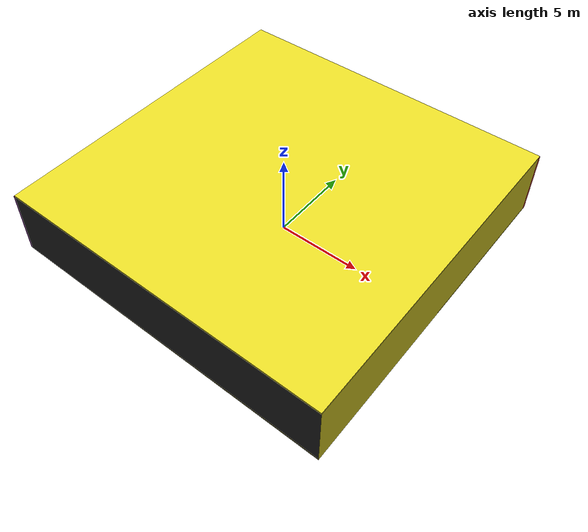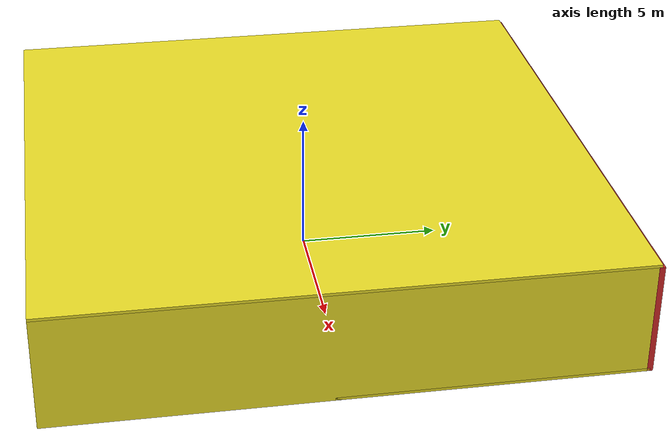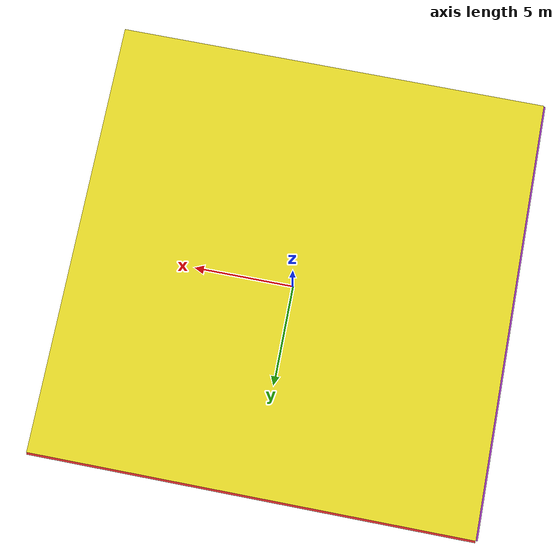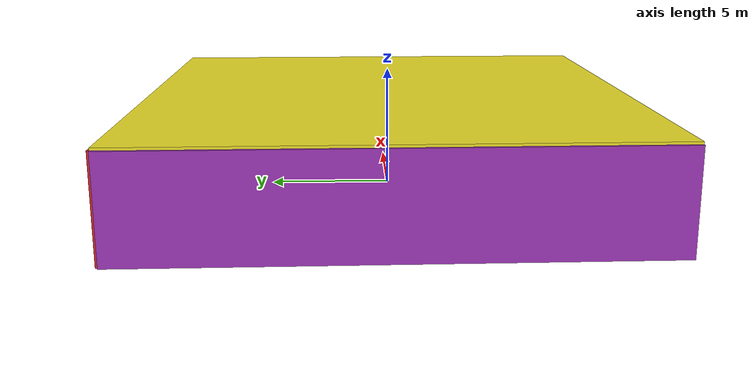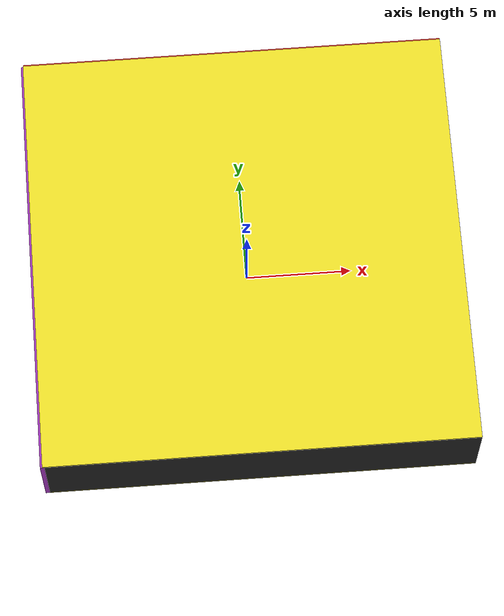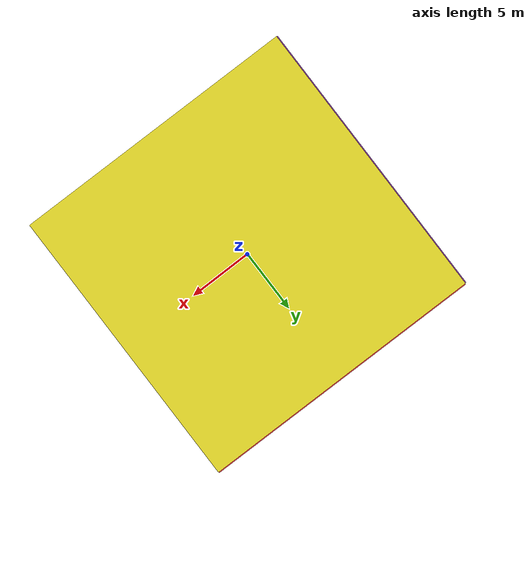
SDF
<sdf version="1.4">
 <world name="default">
  <physics type="ode">
   <max_step_size>0.001</max_step_size>
   <real_time_factor>1</real_time_factor>
   <real_time_update_rate>1000</real_time_update_rate>
   <gravity>0 0 -9.8</gravity>
  </physics>
  <scene><ambient>0.4 0.4 0.4 1</ambient><background>0.7 0.7 0.7 1</background><shadows>1</shadows></scene>
  <model name="Surrounding">
   <static>1</static>
   <link name="Ceiling">
    <collision name="Ceiling_Collision"><geometry><box><size>20 20 0.1</size></box></geometry></collision>
    <visual name="Ceiling_Visual">
     <geometry><box><size>20 20 0.1</size></box></geometry>
     <material>
      <script><uri>file://media/materials/scripts/gazebo.material</uri><name>Gazebo/Yellow</name></script>
     </material>
    </visual>
    <pose>0 0 4.05 0 0 0</pose>
   </link>
   <link name="Wall_South">
    <collision name="Wall_South_Collision">
     <geometry><box><size>20 0 4</size></box></geometry>
     <pose>0 0 2 0 -0 0</pose>
    </collision>
    <visual name="Wall_South_Visual">
     <pose>0 0 2 0 -0 0</pose>
     <geometry><box><size>20 0 4</size></box></geometry>
     <material>
      <script><uri>file://media/materials/scripts/gazebo.material</uri><name>Gazebo/FlatBlack</name></script>
     </material>
    </visual>
    <velocity_decay><linear>0</linear><angular>0</angular></velocity_decay>
    <pose>0 -10 0 0 -0 0</pose>
   </link>
   <link name="Wall_East">
    <collision name="Wall_21_Collision">
     <geometry><box><size>20 0 4</size></box></geometry>
     <pose>0 0 2 0 -0 0</pose>
    </collision>
    <visual name="Wall_21_Visual">
     <pose>0 0 2 0 -0 0</pose>
     <geometry><box><size>20 0 4</size></box></geometry>
     <material>
      <script><uri>file://media/materials/scripts/gazebo.material</uri><name>Gazebo/Yellow</name></script>
     </material>
    </visual>
    <velocity_decay><linear>0</linear><angular>0</angular></velocity_decay>
    <pose>10 0 0 0 -0 1.5708</pose>
   </link>
   <link name="Wall_North">
    <collision name="Wall_22_Collision">
     <geometry><box><size>20 0.2 4</size></box></geometry>
     <pose>0 0 2 0 -0 0</pose>
    </collision>
    <visual name="Wall_22_Visual">
     <pose>0 0 2 0 -0 0</pose>
     <geometry><box><size>20 0.2 4</size></box></geometry>
     <material>
      <script><uri>file://media/materials/scripts/gazebo.material</uri><name>Gazebo/Red</name></script>
     </material>
    </visual>
    <velocity_decay><linear>0</linear><angular>0</angular></velocity_decay>
    <pose>0 10 0 0 -0 0</pose>
   </link>
   <link name="Wall_West">
    <collision name="Wall_23_Collision">
     <geometry><box><size>20 0.2 4</size></box></geometry>
     <pose>0 0 2 0 -0 0</pose>
    </collision>
    <visual name="Wall_23_Visual">
     <pose>0 0 2 0 -0 0</pose>
     <geometry><box><size>20 0.2 4</size></box></geometry>
     <material>
      <script><uri>file://media/materials/scripts/gazebo.material</uri><name>Gazebo/Purple</name></script>
     </material>
    </visual>
    <velocity_decay><linear>0</linear><angular>0</angular></velocity_decay>
    <pose>-10 0 0 0 0 -1.5708</pose>
   </link>
   <link name="Ground_link">
    <collision name="collision">
     <pose>0 0 .05 0 -0 0</pose>
     <geometry><box><size>20 20 0.1</size></box></geometry>
    </collision>
    <visual name="visual">
     <pose>0 0 .05 0 -0 0</pose>
     <geometry><box><size>20 20 0.1</size></box></geometry>
     <material>
      <script>
       <uri>file://media/materials/scripts/gazebo.material</uri>
       <name>Gazebo/YellowTransparent</name>
      </script>
     </material>
    </visual>
   </link>
   <static>1</static>
  </model>
  <spherical_coordinates>
   <surface_model>EARTH_WGS84</surface_model>
   <latitude_deg>0</latitude_deg>
   <longitude_deg>0</longitude_deg>
   <elevation>0</elevation>
   <heading_deg>0</heading_deg>
  </spherical_coordinates>
  <light name="lightball_0" type="diffuse">
   <diffuse>0.8 0.8 0.8 1</diffuse>
   <specular>0.2 0.2 0.2 1</specular>
   <attenuation>
    <range>100</range>
    <constant>0.7</constant>
    <linear>0.01</linear>
    <quadratic>0.001</quadratic>
   </attenuation>
   <direction>-0.5 0.1 -0.9</direction>
   <pose>9.00463370835 8.34388807302 3.87215695845 0 0 0</pose>
  </light>
  <light name="lightball_1" type="diffuse">
   <diffuse>0.8 0.8 0.8 1</diffuse>
   <specular>0.2 0.2 0.2 1</specular>
   <attenuation>
    <range>100</range>
    <constant>0.7</constant>
    <linear>0.01</linear>
    <quadratic>0.001</quadratic>
   </attenuation>
   <direction>-0.5 0.1 -0.9</direction>
   <pose>3.79324652256 4.43400416601 3.70478920413 0 0 0</pose>
  </light>
  <light name="lightball_2" type="diffuse">
   <diffuse>0.8 0.8 0.8 1</diffuse>
   <specular>0.2 0.2 0.2 1</specular>
   <attenuation>
    <range>100</range>
    <constant>0.7</constant>
    <linear>0.01</linear>
    <quadratic>0.001</quadratic>
   </attenuation>
   <direction>-0.5 0.1 -0.9</direction>
   <pose>-0.195912346609 1.82568205018 2.84617736725 0 0 0</pose>
  </light>
  <light name="lightball_3" type="diffuse">
   <diffuse>0.8 0.8 0.8 1</diffuse>
   <specular>0.2 0.2 0.2 1</specular>
   <attenuation>
    <range>100</range>
    <constant>0.7</constant>
    <linear>0.01</linear>
    <quadratic>0.001</quadratic>
   </attenuation>
   <direction>-0.5 0.1 -0.9</direction>
   <pose>-2.61444335181 -2.66633281557 1.92513424654 0 0 0</pose>
  </light>
  <light name="lightball_4" type="diffuse">
   <diffuse>0.8 0.8 0.8 1</diffuse>
   <specular>0.2 0.2 0.2 1</specular>
   <attenuation>
    <range>100</range>
    <constant>0.7</constant>
    <linear>0.01</linear>
    <quadratic>0.001</quadratic>
   </attenuation>
   <direction>-0.5 0.1 -0.9</direction>
   <pose>9.86964488893 5.64366581357 1.21777105797 0 0 0</pose>
  </light>
  <include>
   <uri>model://construction_cone</uri>
   <pose>-6.71506742506 0.808028312877 0 0 0 0.674797777197</pose>
  </include>
  <include>
   <uri>model://textured_shapes</uri>
   <pose>-5.04965418712 1.17597001665 0 0 0 1.98072308834</pose>
  </include>
  <include>
   <uri>model://construction_cone</uri>
   <pose>2.1634560923 -7.13431152407 0 0 0 0.541031014973</pose>
  </include>
  <include>
   <uri>model://robocup_3Dsim_goal</uri>
   <pose>4.15845424717 -1.32138008221 0 0 0 2.1567322602</pose>
  </include>
  <include><uri>model://cabinet</uri><pose>7.07602161679 -7.91681652823 0 0 0 0.735504606047</pose></include>
 </world>
</sdf>

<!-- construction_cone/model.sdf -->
<sdf version="1.5">
  <model name="Construction Cone">
    <link name="link">
      <collision name="collision">
        <geometry>
          <mesh>
            <scale>10 10 10</scale>
            <uri>file://isr-testbed/construction_cone/meshes/construction_cone.dae</uri>
          </mesh>
        </geometry>
      </collision>
      <visual name="visual">
        <geometry>
          <mesh>
            <scale>10 10 10</scale>
            <uri>file://isr-testbed/construction_cone/meshes/construction_cone.dae</uri>
          </mesh>
        </geometry>
      </visual>
    </link>
  </model>
</sdf>

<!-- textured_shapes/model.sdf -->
<sdf version="1.6">
  <model name="textured_shapes">
    <pose>0 0 0.5 0 0 0</pose>
    <link name="box">
      <pose>0 -1.5 0 0 0 0</pose>
      <collision name="collision">
        <geometry>
          <box>
            <size>1 1 1</size>
          </box>
        </geometry>
      </collision>
      <visual name="visual">
        <geometry>
          <box>
            <size>1 1 1</size>
          </box>
        </geometry>
        <material>
          <script>
            <uri>model://../model_source/models/textured_shapes/materials/scripts</uri>
            <uri>model://../model_source/models/textured_shapes/materials/textures</uri>
            <name>TexturedShape/Squares</name>
          </script>
        </material>
      </visual>
    </link>
    <link name="sphere">
      <collision name="collision">
        <geometry>
          <sphere>
            <radius>0.5</radius>
          </sphere>
        </geometry>
      </collision>
      <visual name="visual">
        <geometry>
          <sphere>
            <radius>0.5</radius>
          </sphere>
        </geometry>
        <material>
          <script>
            <uri>model://../model_source/models/textured_shapes/materials/scripts</uri>
            <uri>model://../model_source/models/textured_shapes/materials/textures</uri>
            <name>TexturedShape/Squares</name>
          </script>
        </material>
      </visual>
    </link>
    <link name="cylinder">
      <pose>0 1.5 0 0 0 0</pose>
      <collision name="collision">
        <geometry>
          <cylinder>
            <radius>0.5</radius>
            <length>1</length>
          </cylinder>
        </geometry>
      </collision>
      <visual name="visual">
        <geometry>
          <cylinder>
            <radius>0.5</radius>
            <length>1</length>
          </cylinder>
        </geometry>
        <material>
          <script>
            <uri>model://../model_source/models/textured_shapes/materials/scripts</uri>
            <uri>model://../model_source/models/textured_shapes/materials/textures</uri>
            <name>TexturedShape/Squares</name>
          </script>
        </material>
      </visual>
    </link>
  </model>
</sdf>

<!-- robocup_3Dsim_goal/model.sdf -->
<sdf version="1.5">
  <model name="robocup_3d_goal">
    <static>true</static>
    <link name="left_post">
      <pose>0 1.05 0.45 0 0 0</pose>
      <collision name="collision">
        <geometry>
          <cylinder>
            <radius>0.05</radius>
            <length>0.9</length>
          </cylinder>
        </geometry>
      </collision>
      <visual name="visual">
        <geometry>
          <cylinder>
            <radius>0.05</radius>
            <length>0.9</length>
          </cylinder>
        </geometry>
        <material>
          <script>
            <uri>file://media/materials/scripts/gazebo.material</uri>
            <name>Gazebo/ZincYellow</name>
          </script>
        </material>
      </visual>
    </link>
    <link name="left_support_horiz_lower">
      <pose>0.30 1.05 0.01 0 0 0</pose>
      <collision name="collision">
        <geometry>
          <box>
            <size>0.50 0.02 0.02</size>
          </box>
        </geometry>
      </collision>
      <visual name="visual">
        <geometry>
          <box>
            <size>0.50 0.02 0.02</size>
          </box>
        </geometry>
        <material>
          <script>
            <uri>file://media/materials/scripts/gazebo.material</uri>
            <name>Gazebo/White</name>
          </script>
        </material>
      </visual>
    </link>
    <link name="left_support_horiz_upper">
      <pose>0.30 1.05 0.79 0 0 0</pose>
      <collision name="collision">
        <geometry>
          <box>
            <size>0.50 0.02 0.02</size>
          </box>
        </geometry>
      </collision>
      <visual name="visual">
        <geometry>
          <box>
            <size>0.50 0.02 0.02</size>
          </box>
        </geometry>
        <material>
          <script>
            <uri>file://media/materials/scripts/gazebo.material</uri>
            <name>Gazebo/White</name>
          </script>
        </material>
      </visual>
    </link>
    <link name="left_support_vertical">
      <pose>0.56 1.05 0.4 0 1.5708 0</pose>
      <collision name="collision">
        <geometry>
          <box>
            <size>0.80 0.02 0.02</size>
          </box>
        </geometry>
      </collision>
      <visual name="visual">
        <geometry>
          <box>
            <size>0.80 0.02 0.02</size>
          </box>
        </geometry>
        <material>
          <script>
            <uri>file://media/materials/scripts/gazebo.material</uri>
            <name>Gazebo/White</name>
          </script>
        </material>
      </visual>
    </link>
    <link name="right_support_horiz_lower">
      <pose>0.30 -1.05 0.01 0 0 0</pose>
      <collision name="collision">
        <geometry>
          <box>
            <size>0.50 0.02 0.02</size>
          </box>
        </geometry>
      </collision>
      <visual name="visual">
        <geometry>
          <box>
            <size>0.50 0.02 0.02</size>
          </box>
        </geometry>
        <material>
          <script>
            <uri>file://media/materials/scripts/gazebo.material</uri>
            <name>Gazebo/White</name>
          </script>
        </material>
      </visual>
    </link>
    <link name="right_support_horiz_upper">
      <pose>0.30 -1.05 0.79 0 0 0</pose>
      <collision name="collision">
        <geometry>
          <box>
            <size>0.50 0.02 0.02</size>
          </box>
        </geometry>
      </collision>
      <visual name="visual">
        <geometry>
          <box>
            <size>0.50 0.02 0.02</size>
          </box>
        </geometry>
        <material>
          <script>
            <uri>file://media/materials/scripts/gazebo.material</uri>
            <name>Gazebo/White</name>
          </script>
        </material>
      </visual>
    </link>
    <link name="right_support_vertical">
      <pose>0.56 -1.05 0.4 0 1.5708 0</pose>
      <collision name="collision">
        <geometry>
          <box>
            <size>0.80 0.02 0.02</size>
          </box>
        </geometry>
      </collision>
      <visual name="visual">
        <geometry>
          <box>
            <size>0.80 0.02 0.02</size>
          </box>
        </geometry>
        <material>
          <script>
            <uri>file://media/materials/scripts/gazebo.material</uri>
            <name>Gazebo/White</name>
          </script>
        </material>
      </visual>
    </link>
    <link name="center_support_horiz_lower">
      <pose>0.56 0 0.01 0 1.5708 0</pose>
      <collision name="collision">
        <geometry>
          <box>
            <size>0.02 2.08 0.02</size>
          </box>
        </geometry>
      </collision>
      <visual name="visual">
        <geometry>
          <box>
            <size>0.02 2.08 0.02</size>
          </box>
        </geometry>
        <material>
          <script>
            <uri>file://media/materials/scripts/gazebo.material</uri>
            <name>Gazebo/White</name>
          </script>
        </material>
      </visual>
    </link>
    <link name="center_support_horiz_upper">
      <pose>0.56 0 0.79 0 1.5708 0</pose>
      <collision name="collision">
        <geometry>
          <box>
            <size>0.02 2.08 0.02</size>
          </box>
        </geometry>
      </collision>
      <visual name="visual">
        <geometry>
          <box>
            <size>0.02 2.08 0.02</size>
          </box>
        </geometry>
        <material>
          <script>
            <uri>file://media/materials/scripts/gazebo.material</uri>
            <name>Gazebo/White</name>
          </script>
        </material>
      </visual>
    </link>
    <link name="right_post">
      <pose>0 -1.05 0.45 0 0 0</pose>
      <collision name="collision">
        <geometry>
          <cylinder>
            <radius>0.05</radius>
            <length>0.9</length>
          </cylinder>
        </geometry>
      </collision>
      <visual name="visual">
        <geometry>
          <cylinder>
            <radius>0.05</radius>
            <length>0.9</length>
          </cylinder>
        </geometry>
        <material>
          <script>
            <uri>file://media/materials/scripts/gazebo.material</uri>
            <name>Gazebo/ZincYellow</name>
          </script>
        </material>
      </visual>
    </link>
    <link name="crossbar">
      <pose>0 0 0.85 1.57 1.57 0</pose>
      <collision name="collision">
        <geometry>
          <cylinder>
            <radius>0.05</radius>
            <length>2.0</length>
          </cylinder>
        </geometry>
      </collision>
      <visual name="visual">
        <geometry>
          <cylinder>
            <radius>0.05</radius>
            <length>2.0</length>
          </cylinder>
        </geometry>
        <material>
          <script>
            <uri>file://media/materials/scripts/gazebo.material</uri>
            <name>Gazebo/ZincYellow</name>
          </script>
        </material>
      </visual>
    </link>
    <link name="center_net">
      <pose>0.56 0 0.40 0 0 0</pose>
      <collision name="collision">
        <geometry>
          <box>
            <size>0.01 2.1 0.80</size>
          </box>
        </geometry>
      </collision>
      <visual name="visual">
        <geometry>
          <box>
            <size>0.01 2.1 0.80</size>
          </box>
        </geometry>
        <material>
          <script>
            <uri>model://../model_source/models/robocup09_spl_field/materials/scripts/</uri>
            <uri>model://../model_source/models/robocup09_spl_field/materials/textures/</uri>
            <name>RoboCup/Net</name>
          </script>
        </material>
      </visual>
    </link>
    <link name="left_net">
      <pose>0.30 1.05 0.40 0 0 0</pose>
      <collision name="collision">
        <geometry>
          <box>
            <size>0.50 0.01 0.76</size>
          </box>
        </geometry>
      </collision>
      <visual name="visual">
        <geometry>
          <box>
            <size>0.50 0.01 0.76</size>
          </box>
        </geometry>
        <material>
          <script>
            <uri>model://../model_source/models/robocup09_spl_field/materials/scripts/</uri>
            <uri>model://../model_source/models/robocup09_spl_field/materials/textures/</uri>
            <name>RoboCup/Net</name>
          </script>
        </material>
      </visual>
    </link>
    <link name="right_net">
      <pose>0.30 -1.05 0.40 0 0 0</pose>
      <collision name="collision">
        <geometry>
          <box>
            <size>0.50 0.01 0.76</size>
          </box>
        </geometry>
      </collision>
      <visual name="visual">
        <geometry>
          <box>
            <size>0.50 0.01 0.76</size>
          </box>
        </geometry>
        <material>
          <script>
            <uri>model://../model_source/models/robocup09_spl_field/materials/scripts/</uri>
            <uri>model://../model_source/models/robocup09_spl_field/materials/textures/</uri>
            <name>RoboCup/Net</name>
          </script>
        </material>
      </visual>
    </link>
  </model>
</sdf>

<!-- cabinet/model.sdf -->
<sdf version="1.5">
  <model name="cabinet">
    <static>true</static>
    <link name="cabinet_bottom_plate">
      <inertial>
        <pose>0 0 -1 0 0 0</pose>
        <inertia>
          <ixx>2.050000</ixx>
          <ixy>0</ixy>
          <ixz>0</ixz>
          <iyy>2.050000</iyy>
          <iyz>0</iyz>
          <izz>2.050000</izz>
        </inertia>
        <mass>25.000000</mass>
      </inertial>
      <collision name="cabinet_bottom_plate_geom">
        <pose>0 0 0.010000 0 0 0</pose>
        <geometry>
          <box>
            <size>0.450000 0.450000 0.020000</size>
          </box>
        </geometry>
      </collision>
      <visual name="cabinet_bottom_plate_geom_visual">
        <pose>0 0 0.010000 0 0 0</pose>
        <geometry>
          <box>
            <size>0.450000 0.450000 0.020000</size>
          </box>
        </geometry>
        <material>
          <script>
            <uri>model://media/materials/scripts/gazebo.material</uri>
            <name>Gazebo/Wood</name>
          </script>
        </material>
      </visual>
      <collision name="cabinet_bottom_plate_geom_cabinet_back_plate">
        <pose>0.235000 0 0.510000 0 0 0</pose>
        <geometry>
          <box>
            <size>0.020000 0.450000 1.020000</size>
          </box>
        </geometry>
      </collision>
      <visual name="cabinet_bottom_plate_geom_cabinet_back_plate_visual">
        <pose>0.235000 0 0.510000 0 0 0</pose>
        <geometry>
          <box>
            <size>0.020000 0.450000 1.020000</size>
          </box>
        </geometry>
        <material>
          <script>
            <uri>model://media/materials/scripts/gazebo.material</uri>
            <name>Gazebo/Wood</name>
          </script>
        </material>
      </visual>
      <collision name="cabinet_bottom_plate_geom_cabinet_left_plate">
        <pose>0 0.235000 0.510000 0 0 0</pose>
        <geometry>
          <box>
            <size>0.450000 0.020000 1.020000</size>
          </box>
        </geometry>
      </collision>
      <visual name="cabinet_bottom_plate_geom_cabinet_left_plate_visual">
        <pose>0 0.235000 0.510000 0 0 0</pose>
        <geometry>
          <box>
            <size>0.450000 0.020000 1.020000</size>
          </box>
        </geometry>
        <material>
          <script>
            <uri>model://media/materials/scripts/gazebo.material</uri>
            <name>Gazebo/Wood</name>
          </script>
        </material>
      </visual>
      <collision name="cabinet_bottom_plate_geom_cabinet_middle_plate">
        <pose>0 0 0.510000 0 0 0</pose>
        <geometry>
          <box>
            <size>0.450000 0.450000 0.020000</size>
          </box>
        </geometry>
      </collision>
      <visual name="cabinet_bottom_plate_geom_cabinet_middle_plate_visual">
        <pose>0 0 0.510000 0 0 0</pose>
        <geometry>
          <box>
            <size>0.450000 0.450000 0.020000</size>
          </box>
        </geometry>
        <material>
          <script>
            <uri>model://media/materials/scripts/gazebo.material</uri>
            <name>Gazebo/Wood</name>
          </script>
        </material>
      </visual>
      <collision name="cabinet_bottom_plate_geom_cabinet_right_plate">
        <pose>0 -0.235000 0.510000 0 0 0</pose>
        <geometry>
          <box>
            <size>0.450000 0.020000 1.020000</size>
          </box>
        </geometry>
      </collision>
      <visual name="cabinet_bottom_plate_geom_cabinet_right_plate_visual">
        <pose>0 -0.235000 0.510000 0 0 0</pose>
        <geometry>
          <box>
            <size>0.450000 0.020000 1.020000</size>
          </box>
        </geometry>
        <material>
          <script>
            <uri>model://media/materials/scripts/gazebo.material</uri>
            <name>Gazebo/Wood</name>
          </script>
        </material>
      </visual>
      <collision name="cabinet_bottom_plate_geom_cabinet_top_plate">
        <pose>0 0 1.010000 0 0 0</pose>
        <geometry>
          <box>
            <size>0.450000 0.450000 0.020000</size>
          </box>
        </geometry>
      </collision>
      <visual name="cabinet_bottom_plate_geom_cabinet_top_plate_visual">
        <pose>0 0 1.010000 0 0 0</pose>
        <geometry>
          <box>
            <size>0.450000 0.450000 0.020000</size>
          </box>
        </geometry>
        <material>
          <script>
            <uri>model://media/materials/scripts/gazebo.material</uri>
            <name>Gazebo/Wood</name>
          </script>
        </material>
      </visual>
    </link>
  </model>
</sdf>
